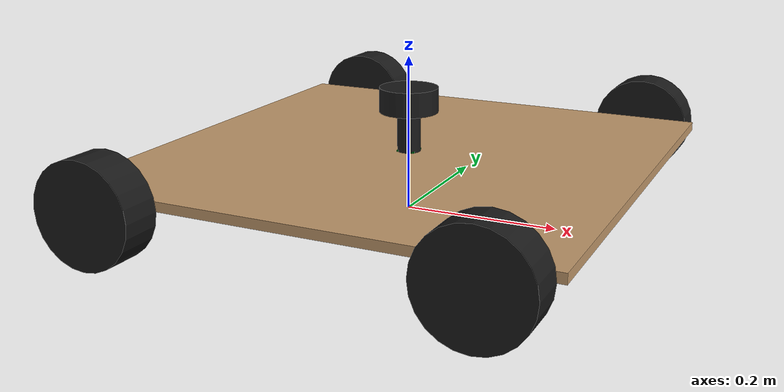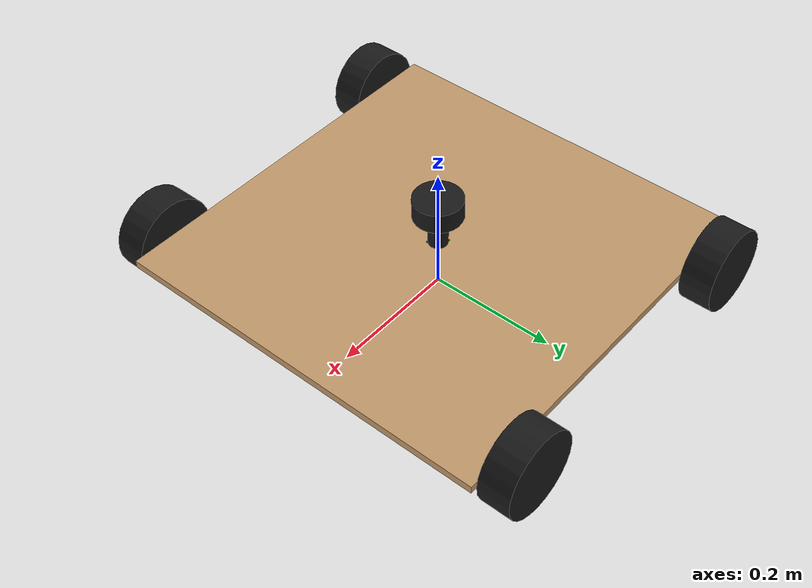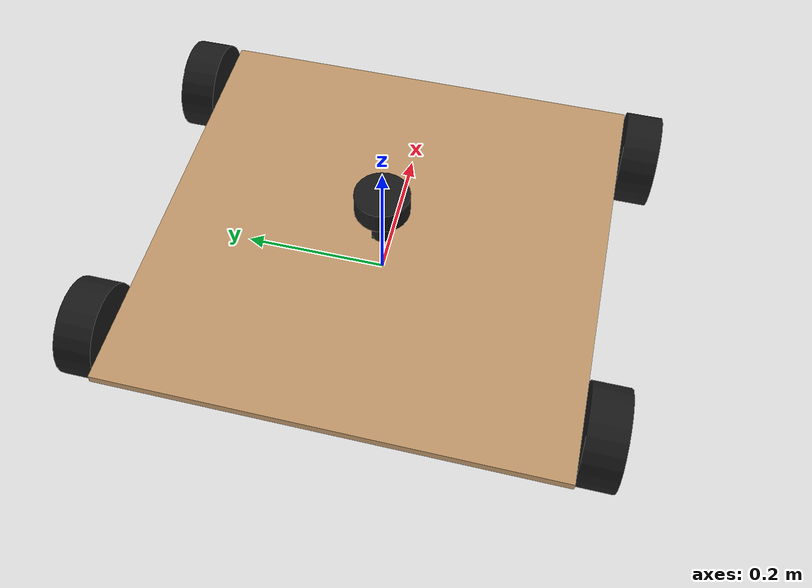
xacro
<?xml version="1.0"?>
<robot name="aura_rover" xmlns:xacro="http://www.ros.org/wiki/xacro">

  <!-- ═══════════════════════════════════════════════════════════════════════
       PARAMETERS
       ═══════════════════════════════════════════════════════════════════════ -->

  <!-- Base plate (plywood/aluminium) -->
  <xacro:property name="base_length"    value="0.6096"/>   <!-- 2 ft = 609.6 mm -->
  <xacro:property name="base_width"     value="0.6096"/>   <!-- 2 ft = 609.6 mm -->
  <xacro:property name="base_thickness" value="0.012"/>    <!-- 12 mm            -->

  <!-- Wheel geometry — Rhino 100RPM 25Kgcm 12V Encoder Motor -->
  <!-- Parameterised: change wheel_diameter to tune odometry    -->
  <xacro:property name="wheel_diameter"   value="0.130"/>   <!-- 130 mm typical, ADJUST for your wheels -->
  <xacro:property name="wheel_radius"     value="${wheel_diameter / 2.0}"/>
  <xacro:property name="wheel_width"      value="0.050"/>   <!-- 50 mm tyre width -->

  <xacro:property name="wheel_separation" value="${base_width + 0.050}"/>

  <!-- Front-rear offset: wheels sit near the corners of the 2ft × 2ft base -->
  <xacro:property name="wheel_x_offset"  value="${base_length / 2.0 - 0.075}"/>  <!-- ~0.23 m from centre -->

  <!-- Sensor heights above base_link origin (= centre of the base plate)         -->
  <!-- TUNE: measure physical distance from base plate TOP to lidar scan plane,    -->
  <!--        then add base_thickness/2 (= 0.006 m).                               -->
  <!-- Example: lidar bracket = 68 mm above plate top → 0.068 + 0.006 = 0.074 m  -->
  <xacro:property name="lidar_height_above_base"  value="0.074"/>   <!-- TUNE to your physical bracket height -->
  <xacro:property name="camera_height_above_base" value="0.100"/>   <!-- TUNE to your physical camera mount  -->

  <!-- Lidar physical geometry (YDLIDAR X4) -->
  <xacro:property name="lidar_radius" value="0.038"/>   <!-- 76 mm diameter body -->
  <xacro:property name="lidar_body_h" value="0.032"/>   <!-- 32 mm tall body     -->

  <!-- Camera physical geometry (generic USB webcam) -->
  <xacro:property name="cam_length" value="0.030"/>
  <xacro:property name="cam_width"  value="0.090"/>
  <xacro:property name="cam_height" value="0.030"/>

  <!-- Mass estimates (kg) -->
  <xacro:property name="base_mass"   value="4.0"/>   <!-- plywood/alu plate + electronics  -->
  <xacro:property name="wheel_mass"  value="0.6"/>   <!-- Rhino motor + wheel assembly      -->
  <xacro:property name="lidar_mass"  value="0.2"/>   <!-- YDLIDAR X4                        -->
  <xacro:property name="camera_mass" value="0.08"/>  <!-- USB webcam                        -->
  <xacro:property name="imu_mass"    value="0.01"/>  <!-- MPU9050 breakout                  -->

  <!-- ═══════════════════════════════════════════════════════════════════════
       INERTIA MACROS
       ═══════════════════════════════════════════════════════════════════════ -->

  <!-- Solid box inertia: m=mass, l=X-length, w=Y-width, h=Z-height -->
  <xacro:macro name="box_inertia" params="m l w h">
    <inertial>
      <mass value="${m}"/>
      <inertia
        ixx="${(m/12.0) * (w*w + h*h)}"  ixy="0.0" ixz="0.0"
        iyy="${(m/12.0) * (l*l + h*h)}"  iyz="0.0"
        izz="${(m/12.0) * (l*l + w*w)}"/>
    </inertial>
  </xacro:macro>

  <!-- Solid cylinder inertia: axis along Z, m=mass, r=radius, h=height -->
  <xacro:macro name="cylinder_inertia" params="m r h">
    <inertial>
      <mass value="${m}"/>
      <inertia
        ixx="${(m/12.0) * (3.0*r*r + h*h)}"  ixy="0.0" ixz="0.0"
        iyy="${(m/12.0) * (3.0*r*r + h*h)}"  iyz="0.0"
        izz="${(m/2.0)  * r*r}"/>
    </inertial>
  </xacro:macro>

  <!-- Tiny dummy inertia for massless / geometry-free links -->
  <xacro:macro name="dummy_inertia">
    <inertial>
      <mass value="0.001"/>
      <inertia ixx="1e-6" ixy="0" ixz="0" iyy="1e-6" iyz="0" izz="1e-6"/>
    </inertial>
  </xacro:macro>

  <xacro:macro name="wheel" params="name x_off y_sign">
    <link name="${name}_wheel_link">
      <visual>
        <!-- Cylinder visual: rotate 90° about X so it faces Y-axis -->
        <origin xyz="0 0 0" rpy="${pi/2} 0 0"/>
        <geometry>
          <cylinder radius="${wheel_radius}" length="${wheel_width}"/>
        </geometry>
        <material name="wheel_black">
          <color rgba="0.1 0.1 0.1 1.0"/>
        </material>
      </visual>
      <collision>
        <origin xyz="0 0 0" rpy="${pi/2} 0 0"/>
        <geometry>
          <cylinder radius="${wheel_radius}" length="${wheel_width}"/>
        </geometry>
      </collision>
      <xacro:cylinder_inertia m="${wheel_mass}" r="${wheel_radius}" h="${wheel_width}"/>
    </link>

    <joint name="${name}_wheel_joint" type="continuous">
      <parent link="base_link"/>
      <child  link="${name}_wheel_link"/>
      <origin xyz="${x_off}
                   ${y_sign * (wheel_separation / 2.0)}
                   ${-(base_thickness / 2.0)}"
              rpy="0 0 0"/>
      <axis xyz="0 1 0"/>
      <dynamics damping="0.05" friction="0.5"/>
      <limit effort="15.0" velocity="6.0"/>
    </joint>
  </xacro:macro>

  <!-- ═══════════════════════════════════════════════════════════════════════
       LINKS
       ═══════════════════════════════════════════════════════════════════════ -->

  <!-- ── base_footprint ──────────────────────────────────────────────────── -->
  <!-- Ground projection frame; no geometry. Origin at ground level under robot -->
  <!-- NOTE: Root link must NOT have inertia (KDL does not support it).          -->
  <link name="base_footprint"/>

  <!-- ── base_link ──────────────────────────────────────────────────────── -->
  <!-- Physical chassis plate.  Origin at the CENTRE of the plate in XYZ.    -->
  <link name="base_link">
    <!-- Main base plate -->
    <visual>
      <origin xyz="0 0 0" rpy="0 0 0"/>
      <geometry>
        <box size="${base_length} ${base_width} ${base_thickness}"/>
      </geometry>
      <material name="plywood">
        <color rgba="0.76 0.60 0.42 1.0"/>
      </material>
    </visual>

    <!-- Lidar Standoff Pillar -->
    <visual>
      <origin xyz="0 0 ${(lidar_height_above_base - lidar_body_h/2.0 + base_thickness/2.0)/2.0}" rpy="0 0 0"/>
      <geometry>
        <cylinder radius="0.015" length="${(lidar_height_above_base - lidar_body_h/2.0) - base_thickness/2.0}"/>
      </geometry>
      <material name="lidar_black">
        <color rgba="0.1 0.1 0.1 1.0"/>
      </material>
    </visual>

    <collision>
      <origin xyz="0 0 0" rpy="0 0 0"/>
      <geometry>
        <box size="${base_length} ${base_width} ${base_thickness}"/>
      </geometry>
    </collision>
    <xacro:box_inertia m="${base_mass}"
                       l="${base_length}"
                       w="${base_width}"
                       h="${base_thickness}"/>
  </link>

  <!-- ── lidar_link ─────────────────────────────────────────────────────── -->
  <!-- YDLIDAR X4.  Mounted on top-centre of robot at 150 mm above base_link  -->
  <link name="lidar_link">
    <visual>
      <origin xyz="0 0 0" rpy="0 0 0"/>
      <geometry>
        <cylinder radius="${lidar_radius}" length="${lidar_body_h}"/>
      </geometry>
      <material name="lidar_black">
        <color rgba="0.1 0.1 0.1 1.0"/>
      </material>
    </visual>
    <collision>
      <origin xyz="0 0 0" rpy="0 0 0"/>
      <geometry>
        <cylinder radius="${lidar_radius}" length="${lidar_body_h}"/>
      </geometry>
    </collision>
    <xacro:cylinder_inertia m="${lidar_mass}"
                             r="${lidar_radius}"
                             h="${lidar_body_h}"/>
  </link>

  <!-- ── imu_link ────────────────────────────────────────────────────────── -->
  <!-- MPU9050 IMU, mounted at centre of chassis -->
  <link name="imu_link">
    <visual>
      <origin xyz="0 0 0" rpy="0 0 0"/>
      <geometry>
        <box size="0.024 0.024 0.002"/>
      </geometry>
      <material name="pcb_green">
        <color rgba="0.0 0.5 0.1 1.0"/>
      </material>
    </visual>
    <collision>
      <origin xyz="0 0 0" rpy="0 0 0"/>
      <geometry>
        <box size="0.024 0.024 0.002"/>
      </geometry>
    </collision>
    <xacro:box_inertia m="${imu_mass}" l="0.024" w="0.024" h="0.002"/>
  </link>

  <!-- ── left_wheel_link (virtual aggregate — left side drive group) ────── -->
  <!-- Physical: front_left_wheel_link and rear_left_wheel_link exist.       -->
  <!-- The "left_wheel_link" in the TF spec is the canonical left-side frame -->
  <!-- placed at the LEFT front wheel position (the encoder wheel).          -->
  <link name="left_wheel_link">
    <xacro:dummy_inertia/>
  </link>

  <!-- ── right_wheel_link (virtual aggregate — right side drive group) ───── -->
  <link name="right_wheel_link">
    <xacro:dummy_inertia/>
  </link>

  <!-- ═══════════════════════════════════════════════════════════════════════
       JOINTS
       ═══════════════════════════════════════════════════════════════════════ -->

  <joint name="base_footprint_joint" type="fixed">
    <parent link="base_footprint"/>
    <child  link="base_link"/>
    <origin xyz="0 0 ${wheel_radius + base_thickness / 2.0}" rpy="0 0 0"/>
  </joint>

  <joint name="lidar_joint" type="fixed">
    <parent link="base_link"/>
    <child  link="lidar_link"/>
    <origin xyz="0 0 ${lidar_height_above_base}" rpy="0 0 0"/>
  </joint>

  <!-- base_link → imu_link (centre of chassis, flat on plate top) -->
  <joint name="imu_joint" type="fixed">
    <parent link="base_link"/>
    <child  link="imu_link"/>
    <origin xyz="0 0 ${base_thickness / 2.0 + 0.001}" rpy="0 0 0"/>
  </joint>

  <!-- Canonical left_wheel_link: fixed at left-front wheel position -->
  <joint name="left_wheel_joint" type="fixed">
    <parent link="base_link"/>
    <child  link="left_wheel_link"/>
    <origin xyz="${wheel_x_offset}
                 ${wheel_separation / 2.0}
                 ${-(base_thickness / 2.0)}"
            rpy="0 0 0"/>
  </joint>

  <!-- Canonical right_wheel_link: fixed at right-front wheel position -->
  <joint name="right_wheel_joint" type="fixed">
    <parent link="base_link"/>
    <child  link="right_wheel_link"/>
    <origin xyz="${wheel_x_offset}
                 ${-(wheel_separation / 2.0)}
                 ${-(base_thickness / 2.0)}"
            rpy="0 0 0"/>
  </joint>

  <xacro:wheel name="front_left"  x_off=" ${wheel_x_offset}" y_sign=" 1"/>
  <xacro:wheel name="rear_left"   x_off="-${wheel_x_offset}" y_sign=" 1"/>
  <xacro:wheel name="front_right" x_off=" ${wheel_x_offset}" y_sign="-1"/>
  <xacro:wheel name="rear_right"  x_off="-${wheel_x_offset}" y_sign="-1"/>

  <xacro:include filename="$(find mobile_robot)/urdf/gazebo.xacro"/>

</robot>
